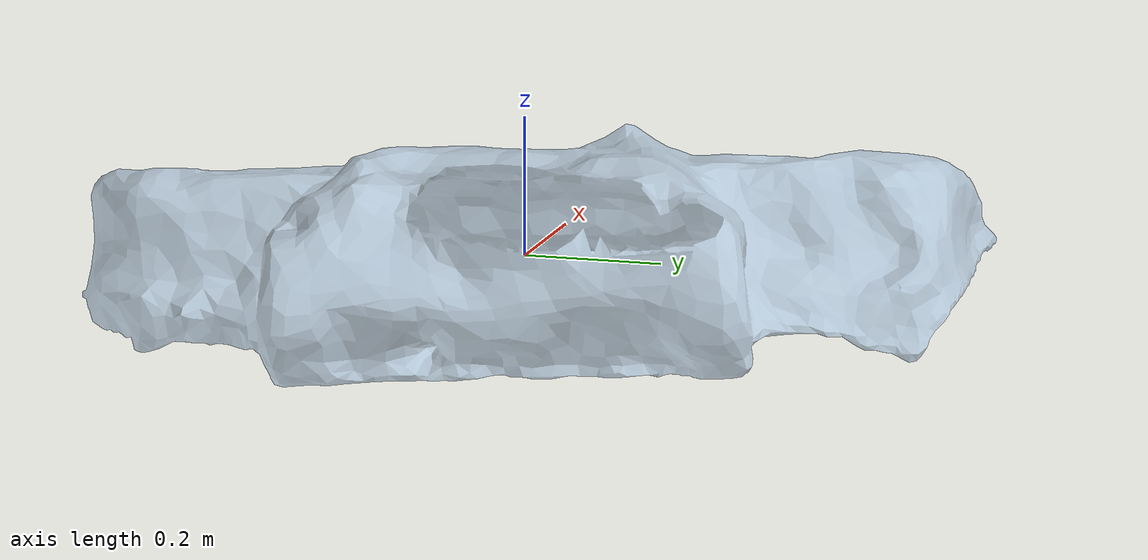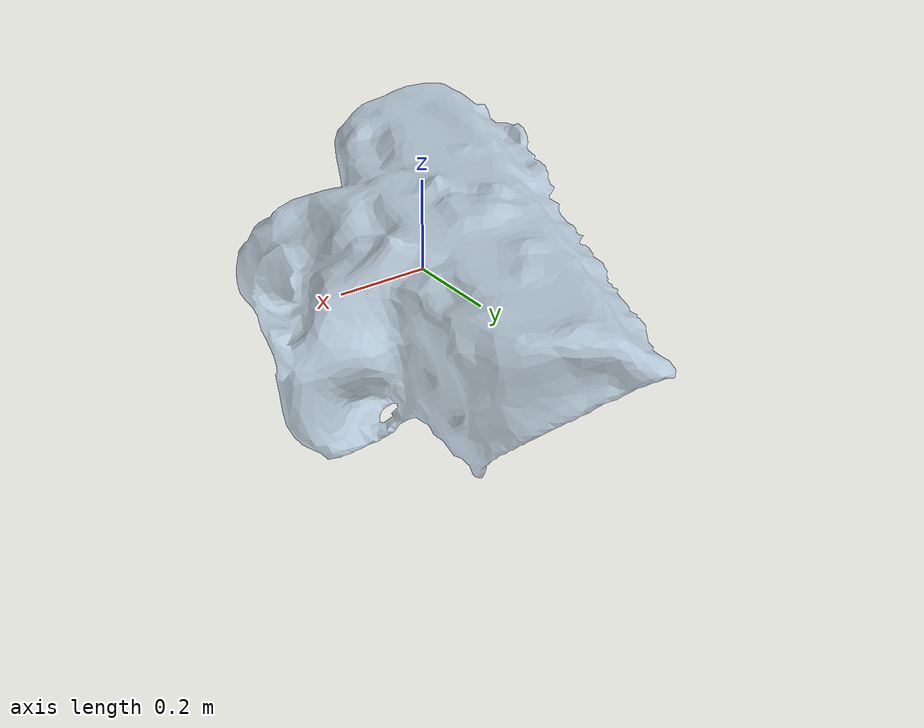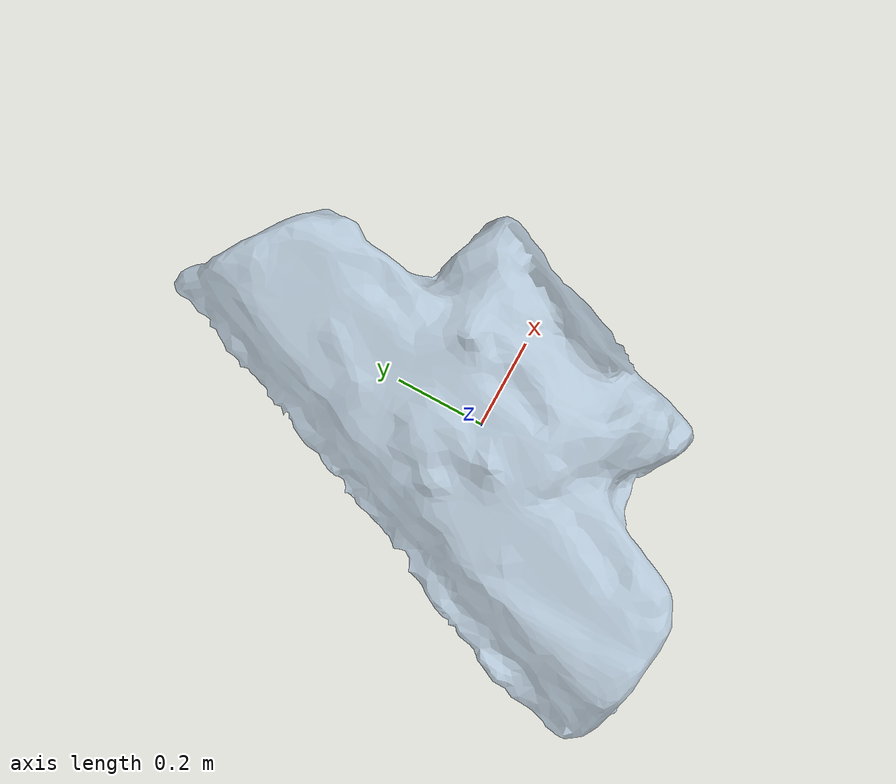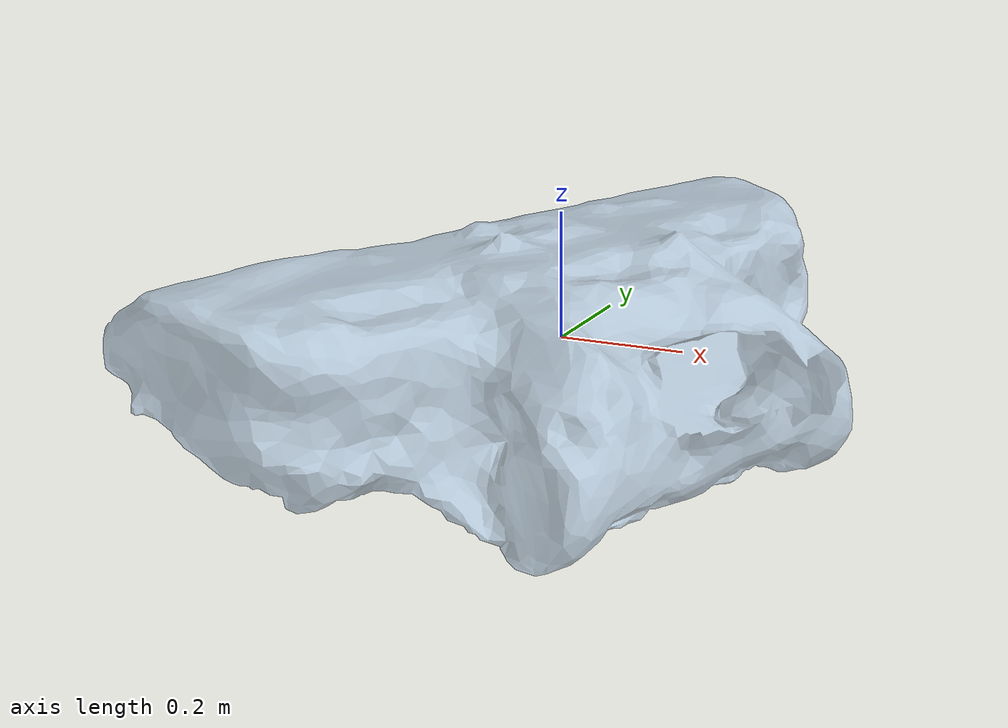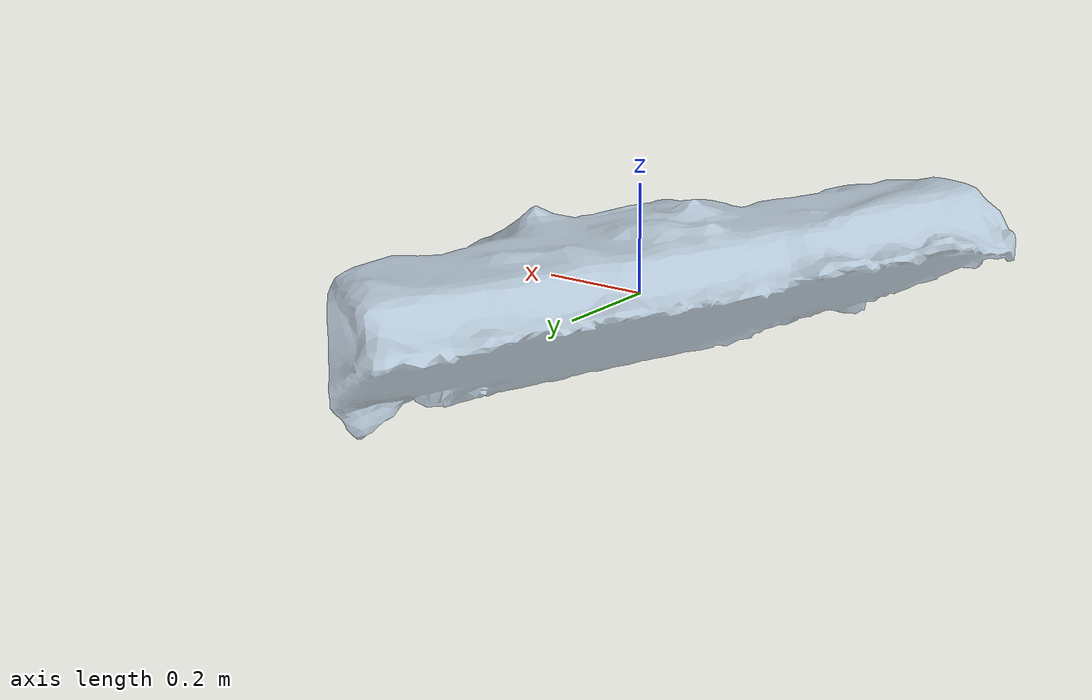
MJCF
<mujoco model="vacuum_bottom">
    <compiler meshdir="./"/>

    <default>
        <geom friction="0.9 0.5 0.5" rgba="0.7 0.8 0.9 0.7"/>
        <joint damping="0.5"/>
    </default>

    <asset>
        <mesh name="vacuum_bottom_mesh" file="vacuum_bottom.obj" scale="1 1 1"/>
    </asset>

    <worldbody>
        <body name="vacuum_bottom_link">
            <inertial pos="0 0 0" mass="0.1" diaginertia="0.002 0.002 0.002"/>
            <geom name="vacuum_bottom" type="mesh" mesh="vacuum_bottom_mesh"
                  pos="0 0 0" quat="1 0 0 0"
                  rgba="0.7 0.8 0.9 0.7"
                  friction="0.9 0.5 0.5"
                  solref="0.02 1"
                  solimp="0.9 0.95 0.001"/>
        </body>
    </worldbody>
</mujoco>
